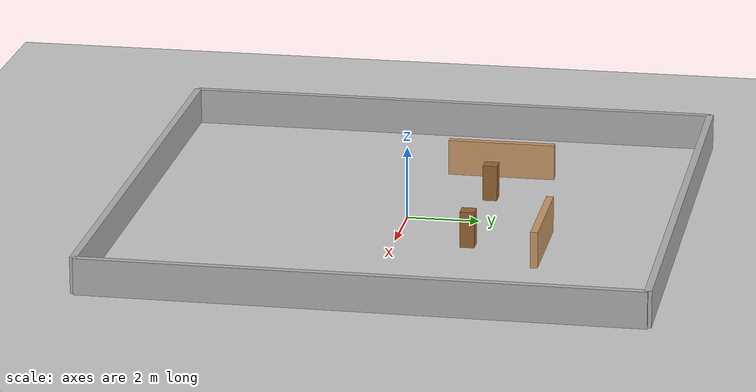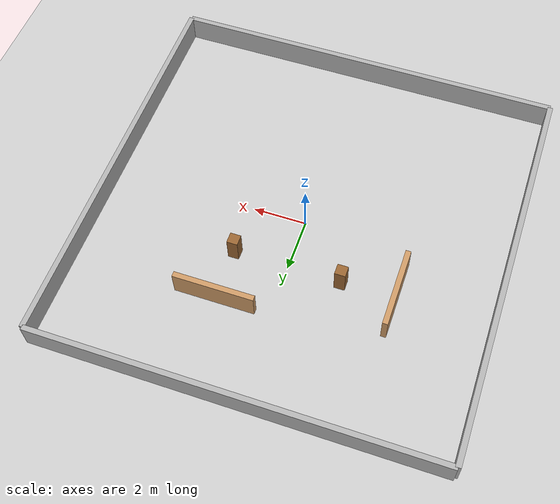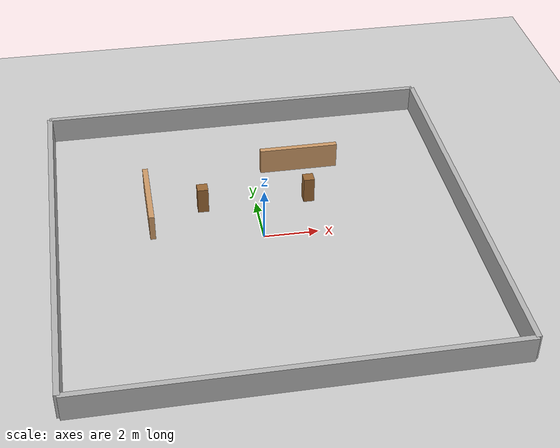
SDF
<?xml version="1.0"?>
<sdf version="1.6">
  <world name="my_house_small_70">

    <!-- Physics -->
    <physics type="ode">
      <real_time_update_rate>1000.0</real_time_update_rate>
      <max_step_size>0.001</max_step_size>
      <real_time_factor>1</real_time_factor>
    </physics>

    <!-- Light -->
    <include>
      <uri>model://sun</uri>
    </include>

    <!-- Ground Plane -->
    <include>
      <uri>model://ground_plane</uri>
    </include>

    <!-- ==========================
         Construction Site - 15m x 15m
         70% INCOMPLETE VERSION
         Missing: 2 inner walls, 2 pillars
       ========================== -->

    <!-- ========== 4 OUTER WALLS (15m x 15m perimeter) - ALL COMPLETE ========== -->

    <!-- North wall -->
    <model name="wall_north">
      <static>true</static>
      <pose>0 7.5 0.5 0 0 0</pose>
      <link name="link">
        <collision name="collision">
          <geometry><box><size>15 0.2 1</size></box></geometry>
        </collision>
        <visual name="visual">
          <geometry><box><size>15 0.2 1</size></box></geometry>
          <material>
            <ambient>0.7 0.7 0.7 1</ambient>
            <diffuse>0.7 0.7 0.7 1</diffuse>
          </material>
        </visual>
      </link>
    </model>

    <!-- South wall -->
    <model name="wall_south">
      <static>true</static>
      <pose>0 -7.5 0.5 0 0 0</pose>
      <link name="link">
        <collision name="collision">
          <geometry><box><size>15 0.2 1</size></box></geometry>
        </collision>
        <visual name="visual">
          <geometry><box><size>15 0.2 1</size></box></geometry>
          <material>
            <ambient>0.7 0.7 0.7 1</ambient>
            <diffuse>0.7 0.7 0.7 1</diffuse>
          </material>
        </visual>
      </link>
    </model>

    <!-- East wall -->
    <model name="wall_east">
      <static>true</static>
      <pose>7.5 0 0.5 0 0 0</pose>
      <link name="link">
        <collision name="collision">
          <geometry><box><size>0.2 15 1</size></box></geometry>
        </collision>
        <visual name="visual">
          <geometry><box><size>0.2 15 1</size></box></geometry>
          <material>
            <ambient>0.7 0.7 0.7 1</ambient>
            <diffuse>0.7 0.7 0.7 1</diffuse>
          </material>
        </visual>
      </link>
    </model>

    <!-- West wall -->
    <model name="wall_west">
      <static>true</static>
      <pose>-7.5 0 0.5 0 0 0</pose>
      <link name="link">
        <collision name="collision">
          <geometry><box><size>0.2 15 1</size></box></geometry>
        </collision>
        <visual name="visual">
          <geometry><box><size>0.2 15 1</size></box></geometry>
          <material>
            <ambient>0.7 0.7 0.7 1</ambient>
            <diffuse>0.7 0.7 0.7 1</diffuse>
          </material>
        </visual>
      </link>
    </model>

    <!-- ========== 2 of 4 INNER WALLS (2 missing) ========== -->

    <!-- Inner wall 1 - vertical, left side - BUILT -->
    <model name="inner_wall_1">
      <static>true</static>
      <pose>-4 2 0.5 0 0 0</pose>
      <link name="link">
        <collision name="collision">
          <geometry><box><size>0.2 3 1</size></box></geometry>
        </collision>
        <visual name="visual">
          <geometry><box><size>0.2 3 1</size></box></geometry>
          <material>
            <ambient>0.8 0.6 0.4 1</ambient>
            <diffuse>0.8 0.6 0.4 1</diffuse>
          </material>
        </visual>
      </link>
    </model>

    <!-- Inner wall 2 - horizontal, top area - BUILT -->
    <model name="inner_wall_2">
      <static>true</static>
      <pose>2 4 0.5 0 0 0</pose>
      <link name="link">
        <collision name="collision">
          <geometry><box><size>3 0.2 1</size></box></geometry>
        </collision>
        <visual name="visual">
          <geometry><box><size>3 0.2 1</size></box></geometry>
          <material>
            <ambient>0.8 0.6 0.4 1</ambient>
            <diffuse>0.8 0.6 0.4 1</diffuse>
          </material>
        </visual>
      </link>
    </model>

    <!-- Inner wall 3 - MISSING (not built yet) -->
    <!-- Inner wall 4 - MISSING (not built yet) -->

    <!-- ========== 2 of 4 PILLARS (2 missing) ========== -->

    <!-- Pillar 1 - top left area - BUILT -->
    <model name="pillar_1">
      <static>true</static>
      <pose>-2 2 0.5 0 0 0</pose>
      <link name="link">
        <collision name="collision">
          <geometry><box><size>0.4 0.4 1</size></box></geometry>
        </collision>
        <visual name="visual">
          <geometry><box><size>0.4 0.4 1</size></box></geometry>
          <material>
            <ambient>0.6 0.4 0.2 1</ambient>
            <diffuse>0.6 0.4 0.2 1</diffuse>
          </material>
        </visual>
      </link>
    </model>

    <!-- Pillar 2 - top right area - BUILT -->
    <model name="pillar_2">
      <static>true</static>
      <pose>2 2 0.5 0 0 0</pose>
      <link name="link">
        <collision name="collision">
          <geometry><box><size>0.4 0.4 1</size></box></geometry>
        </collision>
        <visual name="visual">
          <geometry><box><size>0.4 0.4 1</size></box></geometry>
          <material>
            <ambient>0.6 0.4 0.2 1</ambient>
            <diffuse>0.6 0.4 0.2 1</diffuse>
          </material>
        </visual>
      </link>
    </model>

    <!-- Pillar 3 - MISSING (not built yet) -->
    <!-- Pillar 4 - MISSING (not built yet) -->

  </world>
</sdf>
